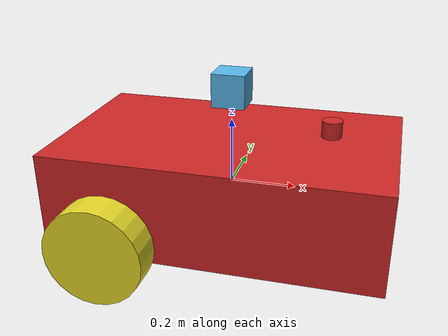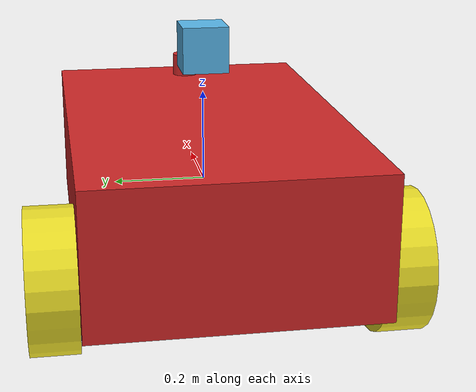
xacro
<?xml version="1.0"?>
<robot name="ship" xmlns:xacro="http://ros.org/wiki/xacro">

<!--Base dimensions-->
<xacro:property name="base_link_x" value="1" />
<xacro:property name="base_link_y" value="0.6" />
<xacro:property name="base_link_z" value="0.3" />

<!--Wheel dimensions-->
<xacro:property name="wheel_link_radius" value="0.15" />
<xacro:property name="wheel_link_length" value="0.1" />
<xacro:property name="wheel_link_z" value="-0.1" />

<!--Caster dimensions-->
<xacro:property name="caster_link_radius" value="0.15" />
<xacro:property name="caster_link_z" value="-0.1" />

<!--Material density-->
<xacro:property name="base_density" value="2710.0" />
<xacro:property name="wheel_density" value="2710.0" />
<xacro:property name="caster_density" value="2710.0" />

<!--Pi constant-->
<xacro:property name="pi_const" value="3.14159265" />

<!--Robot mass-->
<xacro:property name="base_mass" value="${base_density*base_link_x*base_link_y*base_link_z}" />
<xacro:property name="wheel_mass" value="${wheel_density*pi_const*wheel_link_radius*wheel_link_radius*wheel_link_length}" />
<xacro:property name="caster_mass" value="${caster_density*(4.0/3.0)*pi_const*caster_link_radius*caster_link_radius*caster_link_radius}" />

<!--Moments of inetria of the wheel-->
<xacro:property name="Iz_wheel" value="${0.5*wheel_mass*wheel_link_radius*wheel_link_radius}" />
<xacro:property name="I_wheel" value="${(1.0/12.0)*wheel_mass*(3.0*wheel_link_radius*wheel_link_radius+wheel_link_length*wheel_link_length)}" />

<!--Moments of inetria of the caster-->
<xacro:property name="I_caster" value="${(2.0/5.0)*caster_mass*caster_link_radius*caster_link_radius}" />

<!--Macro of the complete inertial section wheel-->
<xacro:macro name="inertia_wheel">
    <inertial>
    <origin rpy="0 0 0" xyz="0 0 0"/>
    <mass value="${wheel_mass}"/>
    <inertia ixx="${I_wheel}" ixy="0.0" ixz="0.0" iyy="${I_wheel}" iyz="0.0" izz="${Iz_wheel}"/>
    </inertial>
</xacro:macro>

<!--Macro of the complete inertial section caster-->
<xacro:macro name="inertia_caster">
    <inertial>
    <origin rpy="0 0 0" xyz="0 0 0"/>
    <mass value="${caster_mass}"/>
    <inertia ixx="${I_caster}" ixy="0.0" ixz="0.0" iyy="${I_caster}" iyz="0.0" izz="${I_caster}"/>
    </inertial>
</xacro:macro>

<!--Gazeboda robotumuzun görüntülenmesi için gazebo parametrelerini belirtmemiz gerekiyor-->
<xacro:include filename="$(find ship_description)/models/robot.gazebo" />

    <material name="grey">
	        <color rgba="0.5 0.5 0.5 1" />
    	</material>

	<material name="blue">
   		<color rgba="0 0 0.8 1"/>
  	</material>

    <link name="base_link">
        <visual>
            <geometry>
                <box size="${base_link_x} ${base_link_y} ${base_link_z}" />
            </geometry>
            <origin rpy="0 0 0" xyz="0 0 0"/>
        </visual>

        <collision>
            <geometry>
                <box size="${base_link_x} ${base_link_y} ${base_link_z}" />
            </geometry>
            <origin rpy="0 0 0" xyz="0 0 0"/>
        </collision>

        <inertial>
            <origin rpy="0 0 0" xyz="0 0 0"/>
            <mass value="${base_mass}"/>
            <inertia ixx="${(1.0/12.0)*base_mass*(base_link_y*base_link_y+base_link_z*base_link_z)}" ixy="0" ixz="0" iyy="${(1/12)*base_mass*(base_link_y*base_link_y+base_link_z*base_link_z)}" iyz="0" izz="${(1/12)*base_mass*(base_link_y*base_link_y+base_link_z*base_link_z)}"/>
        </inertial>
    </link>

    <joint name="imu_joint" type="fixed">
       <parent link="base_link" />
       <child link="imu_link" />
       <origin xyz="0 0 ${base_link_y/2}" />
   </joint>

   <link name="imu_link">
        <visual>
            <geometry>
                <box size="0.1 0.1 0.1" />
            </geometry>
        </visual>

        <collision>
            <geometry>
                <box size="0.1 0.1 0.1" />
            </geometry>
        </collision>

        <inertial>
            <mass value=".1" />
            <inertia ixx="0.145833" ixy="0.0" ixz="0.0" iyy="0.145833" iyz="0.0" izz="0.125" />
        </inertial>
    </link>

    <joint name="laser_joint" type="fixed">
        <parent link="base_link"/>
        <child link="base_scan"/>
        <origin xyz="0.3 0 0.2" rpy="0 0 0"/>
    </joint>

    <link name="base_scan">
        <visual>
            <geometry>
                <cylinder radius="0.03" length="0.05"/>
            </geometry>
        </visual>
        <collision>
            <geometry>
                <cylinder radius="0.03" length="0.05"/>
            </geometry>
        </collision>
        <inertial>
            <mass value="0.1"/>
            <inertia ixx="0.0001" iyy="0.0001" izz="0.0001"/>
        </inertial>
    </link>

    <joint name="wheel1_joint" type="continuous">
        <parent link="base_link"/>
        <child link="wheel1_link"/>
        <origin xyz="${-2*wheel_link_radius} ${-base_link_y/2-wheel_link_length/2} ${wheel_link_z}" rpy="0 0 0"/>
        <axis xyz="0 1 0"/>
        <limit effort="1000" velocity="1000"/>
        <dynamics damping="1.0" friction="1.0"/>
    </joint>

    <link name="wheel1_link">
        <visual>
            <origin rpy="1.570795 0 0" xyz="0 0 0"/>
            <geometry>
                <cylinder length="${wheel_link_length}" radius="${wheel_link_radius}"/>
            </geometry>
        </visual>

        <collision>
            <origin rpy="1.570795 0 0" xyz="0 0 0"/>
            <geometry>
                <cylinder length="${wheel_link_length}" radius="${wheel_link_radius}"/>
            </geometry>
        </collision>

        <xacro:inertia_wheel />
    </link>

    <joint name="wheel2_joint" type="continuous">
        <parent link="base_link"/>
        <child link="wheel2_link"/>
        <origin xyz="${-2*wheel_link_radius} ${base_link_y/2+wheel_link_length/2} ${wheel_link_z}" rpy="0 0 0"/>
        <axis xyz="0 1 0"/>
        <limit effort="1000" velocity="1000"/>
        <dynamics damping="1.0" friction="1.0"/>
    </joint>

    <link name="wheel2_link">
        <visual>
            <origin rpy="1.570795 0 0" xyz="0 0 0"/>
            <geometry>
                <cylinder length="${wheel_link_length}" radius="${wheel_link_radius}"/>
            </geometry>
        </visual>

        <collision>
            <origin rpy="1.570795 0 0" xyz="0 0 0"/>
            <geometry>
                <cylinder length="${wheel_link_length}" radius="${wheel_link_radius}"/>
            </geometry>
        </collision>

        <xacro:inertia_wheel />
    </link>

    <joint name="caster_joint" type="fixed">
        <parent link="base_link"/>
        <child link="caster_link"/>
        <origin xyz="${2*caster_link_radius} 0 ${caster_link_z}" rpy="0 0 0"/>
    </joint>

    <link name="caster_link">
        <visual>
            <origin rpy="0 0 0" xyz="0 0 0"/>
            <geometry>
                <sphere radius="${caster_link_radius}"/>
            </geometry>
        </visual>

        <collision>
            <origin rpy="0 0 0" xyz="0 0 0"/>
            <geometry>
                <sphere radius="${caster_link_radius}"/>
            </geometry>
        </collision>

        <xacro:inertia_caster />
    </link>

</robot>
